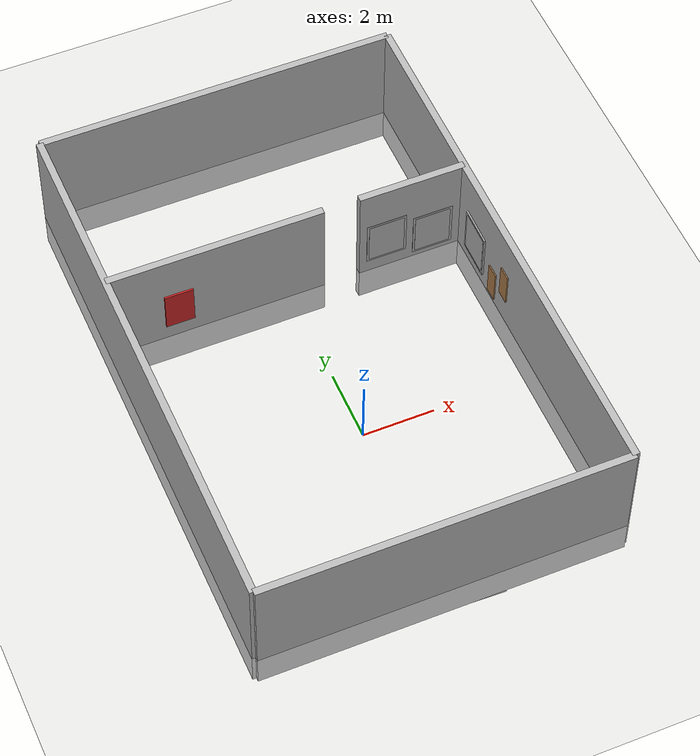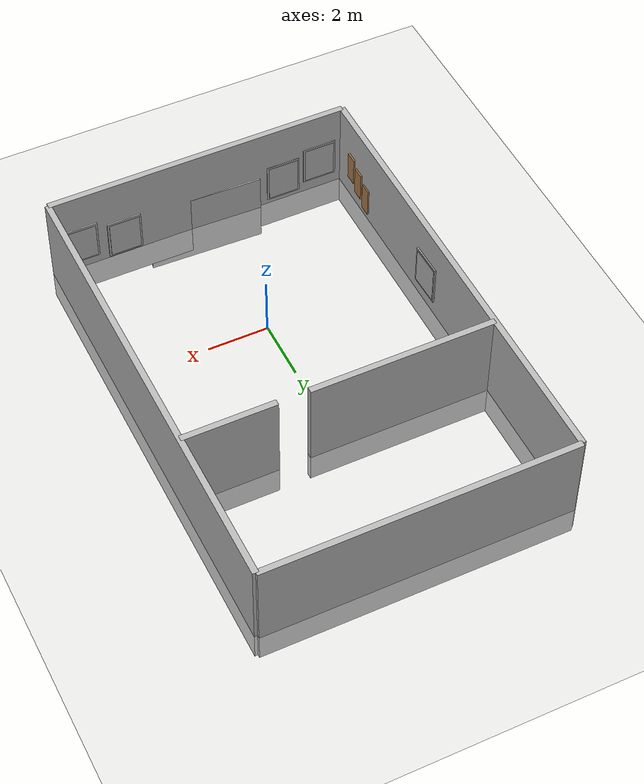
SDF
<sdf version="1.4">
 <world name="default">
  <light name="sun" type="directional">
   <pose>0 0 10 0 -0 0</pose>
   <diffuse>0.8 0.8 0.8 1</diffuse>
   <specular>0.2 0.2 0.2 1</specular>
   <attenuation>
    <range>1000</range>
    <constant>0.9</constant>
    <linear>0.01</linear>
    <quadratic>0.001</quadratic>
   </attenuation>
   <direction>-0.5 0.1 -0.9</direction>
   <spot><inner_angle>0</inner_angle><outer_angle>0</outer_angle><falloff>0</falloff></spot>
  </light>
  <model name="ground_plane">
   <static>1</static>
   <link name="link">
    <collision name="collision">
     <geometry><plane><normal>0 0 1</normal><size>100 100</size></plane></geometry>
     <surface><friction><ode><mu>100</mu><mu2>50</mu2></ode></friction></surface>
    </collision>
    <visual name="visual">
     <cast_shadows>0</cast_shadows>
     <geometry><plane><normal>0 0 1</normal><size>100 100</size></plane></geometry>
     <material>
      <script><uri>file://media/materials/scripts/gazebo.material</uri><name>Gazebo/Grey</name></script>
     </material>
    </visual>
    <enable_wind>1</enable_wind>
   </link>
  </model>
  <gravity>0 0 -9.81</gravity>
  <magnetic_field>6e-06 2.3e-05 -4.2e-05</magnetic_field>
  <atmosphere type="adiabatic"/>
  <physics type="ode">
   <max_step_size>0.001</max_step_size>
   <real_time_factor>1</real_time_factor>
   <real_time_update_rate>1000</real_time_update_rate>
  </physics>
  <scene><ambient>0.4 0.4 0.4 1</ambient><background>0.7 0.7 0.7 1</background><shadows>1</shadows></scene>
  <spherical_coordinates>
   <surface_model>EARTH_WGS84</surface_model>
   <latitude_deg>0</latitude_deg>
   <longitude_deg>0</longitude_deg>
   <elevation>0</elevation>
   <heading_deg>0</heading_deg>
  </spherical_coordinates>
  <model name="wall_1_model">
   <pose>0 -5 1 0 0 0</pose>
   <static>true</static>
   <link name="wall_1_body">
    <inertial>
     <mass>1.0</mass>
     <inertia><ixx>1.0</ixx><ixy>0.0</ixy><ixz>0.0</ixz><iyy>1.0</iyy><iyz>0.0</iyz><izz>1.0</izz></inertia>
    </inertial>
    <collision name="collision"><geometry><box><size>10 0.2 4</size></box></geometry></collision>
    <visual name="visual"><geometry><box><size>10 0.2 4</size></box></geometry></visual>
   </link>
  </model>
  <model name="wall_2_model">
   <pose>0 10 1 0 0 0</pose>
   <static>true</static>
   <link name="wall_2_body">
    <inertial>
     <mass>1.0</mass>
     <inertia><ixx>1.0</ixx><ixy>0.0</ixy><ixz>0.0</ixz><iyy>1.0</iyy><iyz>0.0</iyz><izz>1.0</izz></inertia>
    </inertial>
    <collision name="collision"><geometry><box><size>10 0.2 4</size></box></geometry></collision>
    <visual name="visual"><geometry><box><size>10 0.2 4</size></box></geometry></visual>
   </link>
  </model>
  <model name="wall_3_model">
   <pose>-5 2.5 1 0 0 0</pose>
   <static>true</static>
   <link name="wall_3_body">
    <inertial>
     <mass>1.0</mass>
     <inertia><ixx>1.0</ixx><ixy>0.0</ixy><ixz>0.0</ixz><iyy>1.0</iyy><iyz>0.0</iyz><izz>1.0</izz></inertia>
    </inertial>
    <collision name="collision"><geometry><box><size>0.2 15 4</size></box></geometry></collision>
    <visual name="visual"><geometry><box><size>0.2 15 4</size></box></geometry></visual>
   </link>
  </model>
  <model name="wall_4_model">
   <pose>5 2.5 1 0 0 0</pose>
   <static>true</static>
   <link name="wall_4_body">
    <inertial>
     <mass>1.0</mass>
     <inertia><ixx>1.0</ixx><ixy>0.0</ixy><ixz>0.0</ixz><iyy>1.0</iyy><iyz>0.0</iyz><izz>1.0</izz></inertia>
    </inertial>
    <collision name="collision"><geometry><box><size>0.2 15 4</size></box></geometry></collision>
    <visual name="visual"><geometry><box><size>0.2 15 4</size></box></geometry></visual>
   </link>
  </model>
  <model name="wall_5_model">
   <pose>-2 5 1 0 0 0</pose>
   <static>true</static>
   <link name="wall_5_body">
    <inertial>
     <mass>1.0</mass>
     <inertia><ixx>1.0</ixx><ixy>0.0</ixy><ixz>0.0</ixz><iyy>1.0</iyy><iyz>0.0</iyz><izz>1.0</izz></inertia>
    </inertial>
    <collision name="collision"><geometry><box><size>6 0.2 4</size></box></geometry></collision>
    <visual name="visual"><geometry><box><size>6 0.2 4</size></box></geometry></visual>
   </link>
  </model>
  <model name="wall_6_model">
   <pose>3.5 5 1 0 0 0</pose>
   <static>true</static>
   <link name="wall_6_body">
    <inertial>
     <mass>1.0</mass>
     <inertia><ixx>1.0</ixx><ixy>0.0</ixy><ixz>0.0</ixz><iyy>1.0</iyy><iyz>0.0</iyz><izz>1.0</izz></inertia>
    </inertial>
    <collision name="collision"><geometry><box><size>3 0.2 4</size></box></geometry></collision>
    <visual name="visual"><geometry><box><size>3 0.2 4</size></box></geometry></visual>
   </link>
  </model>
  <include>
   <uri>model://wall_with_reem_photo</uri>
   <pose>-0.1224 -4.90869 0 1e-06 -6e-06 -1.60377</pose>
  </include>
  <include><uri>model://cuadro_camara</uri><pose>-4.134 -4.917 0.4 0.000000 0.000000 0.000000</pose></include>
  <include><uri>model://cuadro_pajaro</uri><pose>-2.85 -4.92 0.15 0.000000 0.000000 0.000000</pose></include>
  <include><uri>model://cuadro_edificio</uri><pose>-4.88 1.098 0.51 0.000000 0.000000 -1.55</pose></include>
  <include><uri>model://cuadro_perro</uri><pose>2.7851 4.881 0.4 0.000000 0.000000 0.00</pose></include>
  <include><uri>model://cuadro_semaforo</uri><pose>4.12 4.881 0.15 0.000000 0.000000 0.00</pose></include>
  <include><uri>model://cuadro_radio</uri><pose>2.698 -4.8136 0.15 0.000000 0.000000 0.00</pose></include>
  <include><uri>model://cuadro_robot</uri><pose>4.15 -4.8136 0.4 0.000000 0.000000 0.00</pose></include>
  <include><uri>model://cuadro_walle</uri><pose>4.84 3.8254 0.4 0.000000 0.000000 -1.5808</pose></include>
  <include>
   <name>box_0</name>
   <uri>model://box</uri>
   <pose>-4.92 -4.0 1.25 0.000000 0.000000 0.000000</pose>
  </include>
  <include>
   <uri>model://box</uri>
   <name>box_1</name>
   <pose>-4.92 -3.5 1.0000 0.000000 0.000000 0.00</pose>
  </include>
  <include>
   <uri>model://box</uri>
   <name>box_2</name>
   <pose>-4.93 -3.0 0.750000 0.000000 0.000000 0.00</pose>
  </include>
  <include>
   <uri>model://box</uri>
   <name>box_3</name>
   <pose>4.94 2.11 1.32000 0.000000 0.000000 0.00</pose>
  </include>
  <include>
   <uri>model://box</uri>
   <name>box_4</name>
   <pose>4.94 2.77 0.66000 0.000000 0.000000 0.00</pose>
  </include>
  <include><uri>model://pal_textured_object</uri><pose>-3.111 4.86 1.11 0 0 0.0</pose></include>
 </world>
</sdf>

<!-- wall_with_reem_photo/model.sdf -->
<sdf version='1.4'>
  <model name='table'>
      <link name="wallWithREEMphoto_body">
        <inertial>
          <mass>4.0</mass>
          <inertia>
            <ixx>1.0</ixx>
            <ixy>0.0</ixy>
            <ixz>0.0</ixz>
            <iyy>1.0</iyy>
            <iyz>0.0</iyz>
            <izz>1.0</izz>
          </inertia>
        </inertial>
        <collision name="collision">
          <geometry>
            <box>
              <size>0.05 3.8 2.5</size> <!-- Wall dimensions: thickness width length -->
            </box>
          </geometry>
        </collision>
        <visual name="visual">
          <geometry>
            <box>
              <size>0.05 3.8 2.5</size> <!-- Wall dimensions: thickness width length -->
            </box>
          </geometry>
          <material>
            <script>
	      <uri>model://wall_with_reem_photo/material/scripts</uri>
	      <uri>model://wall_with_reem_photo/material/textures</uri>
              <name>Custom/REEM_photo0</name>
            </script>
          </material>
        </visual>
      </link>
    </model>
</sdf>

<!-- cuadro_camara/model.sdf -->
<sdf version='1.7'>
  <model name='cuadro_camara'>
    <link name='link_1'>
      <inertial>
        <mass>0.0721491</mass>
        <inertia>
          <ixx>0.0117732</ixx>
          <ixy>0</ixy>
          <ixz>0</ixz>
          <iyy>0.0194833</iyy>
          <iyz>0</iyz>
          <izz>0.00773492</izz>
        </inertia>
        <pose>0 0 0 0 -0 0</pose>
      </inertial>
      <pose>-0.008942 0.025101 0.708108 0 -0 0</pose>
      <self_collide>0</self_collide>
      <enable_wind>0</enable_wind>
      <kinematic>0</kinematic>
      <visual name='visual'>
        <pose>0 0 0 0 -0 0</pose>
        <geometry>
          <box>
            <size>1.13332 0.04549 1.3986</size>
          </box>
        </geometry>
        <material>
          <lighting>1</lighting>
          <script>
            <uri>model://cuadro_camara/madera/scripts</uri>
            <uri>model://cuadro_camara/madera/textures</uri>
            <name>textur/madera</name>
          </script>
          <shader type='pixel'/>
          <emissive>0 0 0 1</emissive>
        </material>
        <transparency>0</transparency>
        <cast_shadows>1</cast_shadows>
      </visual>
      <collision name='collision'>
        <laser_retro>0</laser_retro>
        <max_contacts>10</max_contacts>
        <pose>0 0 0 0 -0 0</pose>
        <geometry>
          <box>
            <size>1.13332 0.04549 1.3986</size>
          </box>
        </geometry>
        <surface>
          <friction>
            <ode>
              <mu>1</mu>
              <mu2>1</mu2>
              <fdir1>0 0 0</fdir1>
              <slip1>0</slip1>
              <slip2>0</slip2>
            </ode>
            <torsional>
              <coefficient>1</coefficient>
              <patch_radius>0</patch_radius>
              <surface_radius>0</surface_radius>
              <use_patch_radius>1</use_patch_radius>
              <ode>
                <slip>0</slip>
              </ode>
            </torsional>
          </friction>
          <bounce>
            <restitution_coefficient>0</restitution_coefficient>
            <threshold>1e+06</threshold>
          </bounce>
          <contact>
            <collide_without_contact>0</collide_without_contact>
            <collide_without_contact_bitmask>1</collide_without_contact_bitmask>
            <collide_bitmask>1</collide_bitmask>
            <ode>
              <soft_cfm>0</soft_cfm>
              <soft_erp>0.2</soft_erp>
              <kp>1e+13</kp>
              <kd>1</kd>
              <max_vel>0.01</max_vel>
              <min_depth>0</min_depth>
            </ode>
            <bullet>
              <split_impulse>1</split_impulse>
              <split_impulse_penetration_threshold>-0.01</split_impulse_penetration_threshold>
              <soft_cfm>0</soft_cfm>
              <soft_erp>0.2</soft_erp>
              <kp>1e+13</kp>
              <kd>1</kd>
            </bullet>
          </contact>
        </surface>
      </collision>
    </link>
    <link name='link_2'>
      <inertial>
        <mass>0.065261</mass>
        <inertia>
          <ixx>0.00887713</ixx>
          <ixy>0</ixy>
          <ixz>0</ixz>
          <iyy>0.0143907</iyy>
          <iyz>0</iyz>
          <izz>0.00555914</izz>
        </inertia>
        <pose>0 0 0 0 -0 0</pose>
      </inertial>
      <pose>-0.011219 0.030459 0.705148 0 -0 0</pose>
      <self_collide>0</self_collide>
      <enable_wind>0</enable_wind>
      <kinematic>0</kinematic>
      <visual name='visual'>
        <pose>0 0 0 0 -0 0</pose>
        <geometry>
          <box>
            <size>1.00896 0.064749 1.27597</size>
          </box>
        </geometry>
        <material>
          <lighting>1</lighting>
          <script>
            <uri>model://cuadro_camara/materials/scripts</uri>
            <uri>model://cuadro_camara/materials/textures</uri>
            <name>text/cam</name>
          </script>
          <shader type='pixel'/>
          <emissive>0 0 0 1</emissive>
        </material>
        <transparency>0</transparency>
        <cast_shadows>1</cast_shadows>
      </visual>
      <collision name='collision'>
        <laser_retro>0</laser_retro>
        <max_contacts>10</max_contacts>
        <pose>0 0 0 0 -0 0</pose>
        <geometry>
          <box>
            <size>1.00896 0.064749 1.27597</size>
          </box>
        </geometry>
        <surface>
          <friction>
            <ode>
              <mu>1</mu>
              <mu2>1</mu2>
              <fdir1>0 0 0</fdir1>
              <slip1>0</slip1>
              <slip2>0</slip2>
            </ode>
            <torsional>
              <coefficient>1</coefficient>
              <patch_radius>0</patch_radius>
              <surface_radius>0</surface_radius>
              <use_patch_radius>1</use_patch_radius>
              <ode>
                <slip>0</slip>
              </ode>
            </torsional>
          </friction>
          <bounce>
            <restitution_coefficient>0</restitution_coefficient>
            <threshold>1e+06</threshold>
          </bounce>
          <contact>
            <collide_without_contact>0</collide_without_contact>
            <collide_without_contact_bitmask>1</collide_without_contact_bitmask>
            <collide_bitmask>1</collide_bitmask>
            <ode>
              <soft_cfm>0</soft_cfm>
              <soft_erp>0.2</soft_erp>
              <kp>1e+13</kp>
              <kd>1</kd>
              <max_vel>0.01</max_vel>
              <min_depth>0</min_depth>
            </ode>
            <bullet>
              <split_impulse>1</split_impulse>
              <split_impulse_penetration_threshold>-0.01</split_impulse_penetration_threshold>
              <soft_cfm>0</soft_cfm>
              <soft_erp>0.2</soft_erp>
              <kp>1e+13</kp>
              <kd>1</kd>
            </bullet>
          </contact>
        </surface>
      </collision>
    </link>
    <static>1</static>
    <allow_auto_disable>1</allow_auto_disable>
  </model>
</sdf>

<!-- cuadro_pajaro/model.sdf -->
<sdf version='1.7'>
  <model name='cuadro_pajaro'>
    <link name='link_1'>
      <inertial>
        <mass>0.0721491</mass>
        <inertia>
          <ixx>0.0117732</ixx>
          <ixy>0</ixy>
          <ixz>0</ixz>
          <iyy>0.0194833</iyy>
          <iyz>0</iyz>
          <izz>0.00773492</izz>
        </inertia>
        <pose>0 0 0 0 -0 0</pose>
      </inertial>
      <pose>-0.008942 0.025101 0.708108 0 -0 0</pose>
      <self_collide>0</self_collide>
      <enable_wind>0</enable_wind>
      <kinematic>0</kinematic>
      <visual name='visual'>
        <pose>0 0 0 0 -0 0</pose>
        <geometry>
          <box>
            <size>1.13332 0.04549 1.3986</size>
          </box>
        </geometry>
        <material>
          <lighting>1</lighting>
          <script>
            <uri>model://cuadro_pajaro/madera/scripts</uri>
            <uri>model://cuadro_pajaro/madera/textures</uri>
            <name>textur/madera</name>
          </script>
          <shader type='pixel'/>
          <emissive>0 0 0 1</emissive>
        </material>
        <transparency>0</transparency>
        <cast_shadows>1</cast_shadows>
      </visual>
      <collision name='collision'>
        <laser_retro>0</laser_retro>
        <max_contacts>10</max_contacts>
        <pose>0 0 0 0 -0 0</pose>
        <geometry>
          <box>
            <size>1.13332 0.04549 1.3986</size>
          </box>
        </geometry>
        <surface>
          <friction>
            <ode>
              <mu>1</mu>
              <mu2>1</mu2>
              <fdir1>0 0 0</fdir1>
              <slip1>0</slip1>
              <slip2>0</slip2>
            </ode>
            <torsional>
              <coefficient>1</coefficient>
              <patch_radius>0</patch_radius>
              <surface_radius>0</surface_radius>
              <use_patch_radius>1</use_patch_radius>
              <ode>
                <slip>0</slip>
              </ode>
            </torsional>
          </friction>
          <bounce>
            <restitution_coefficient>0</restitution_coefficient>
            <threshold>1e+06</threshold>
          </bounce>
          <contact>
            <collide_without_contact>0</collide_without_contact>
            <collide_without_contact_bitmask>1</collide_without_contact_bitmask>
            <collide_bitmask>1</collide_bitmask>
            <ode>
              <soft_cfm>0</soft_cfm>
              <soft_erp>0.2</soft_erp>
              <kp>1e+13</kp>
              <kd>1</kd>
              <max_vel>0.01</max_vel>
              <min_depth>0</min_depth>
            </ode>
            <bullet>
              <split_impulse>1</split_impulse>
              <split_impulse_penetration_threshold>-0.01</split_impulse_penetration_threshold>
              <soft_cfm>0</soft_cfm>
              <soft_erp>0.2</soft_erp>
              <kp>1e+13</kp>
              <kd>1</kd>
            </bullet>
          </contact>
        </surface>
      </collision>
    </link>
    <link name='link_2'>
      <inertial>
        <mass>0.065261</mass>
        <inertia>
          <ixx>0.00887713</ixx>
          <ixy>0</ixy>
          <ixz>0</ixz>
          <iyy>0.0143907</iyy>
          <iyz>0</iyz>
          <izz>0.00555914</izz>
        </inertia>
        <pose>0 0 0 0 -0 0</pose>
      </inertial>
      <pose>-0.011219 0.030459 0.705148 0 -0 0</pose>
      <self_collide>0</self_collide>
      <enable_wind>0</enable_wind>
      <kinematic>0</kinematic>
      <visual name='visual'>
        <pose>0 0 0 0 -0 0</pose>
        <geometry>
          <box>
            <size>1.00896 0.064749 1.27597</size>
          </box>
        </geometry>
        <material>
          <lighting>1</lighting>
          <script>
            <uri>model://cuadro_pajaro/materials/scripts</uri>
            <uri>model://cuadro_pajaro/materials/textures</uri>
            <name>text/paj</name>
          </script>
          <shader type='pixel'/>
          <emissive>0 0 0 1</emissive>
        </material>
        <transparency>0</transparency>
        <cast_shadows>1</cast_shadows>
      </visual>
      <collision name='collision'>
        <laser_retro>0</laser_retro>
        <max_contacts>10</max_contacts>
        <pose>0 0 0 0 -0 0</pose>
        <geometry>
          <box>
            <size>1.00896 0.064749 1.27597</size>
          </box>
        </geometry>
        <surface>
          <friction>
            <ode>
              <mu>1</mu>
              <mu2>1</mu2>
              <fdir1>0 0 0</fdir1>
              <slip1>0</slip1>
              <slip2>0</slip2>
            </ode>
            <torsional>
              <coefficient>1</coefficient>
              <patch_radius>0</patch_radius>
              <surface_radius>0</surface_radius>
              <use_patch_radius>1</use_patch_radius>
              <ode>
                <slip>0</slip>
              </ode>
            </torsional>
          </friction>
          <bounce>
            <restitution_coefficient>0</restitution_coefficient>
            <threshold>1e+06</threshold>
          </bounce>
          <contact>
            <collide_without_contact>0</collide_without_contact>
            <collide_without_contact_bitmask>1</collide_without_contact_bitmask>
            <collide_bitmask>1</collide_bitmask>
            <ode>
              <soft_cfm>0</soft_cfm>
              <soft_erp>0.2</soft_erp>
              <kp>1e+13</kp>
              <kd>1</kd>
              <max_vel>0.01</max_vel>
              <min_depth>0</min_depth>
            </ode>
            <bullet>
              <split_impulse>1</split_impulse>
              <split_impulse_penetration_threshold>-0.01</split_impulse_penetration_threshold>
              <soft_cfm>0</soft_cfm>
              <soft_erp>0.2</soft_erp>
              <kp>1e+13</kp>
              <kd>1</kd>
            </bullet>
          </contact>
        </surface>
      </collision>
    </link>
    <static>1</static>
    <allow_auto_disable>1</allow_auto_disable>
  </model>
</sdf>

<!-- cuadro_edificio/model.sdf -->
<sdf version='1.7'>
  <model name='cuadro_edificio'>
    <link name='link_1'>
      <inertial>
        <mass>0.0721491</mass>
        <inertia>
          <ixx>0.0117732</ixx>
          <ixy>0</ixy>
          <ixz>0</ixz>
          <iyy>0.0194833</iyy>
          <iyz>0</iyz>
          <izz>0.00773492</izz>
        </inertia>
        <pose>0 0 0 0 -0 0</pose>
      </inertial>
      <pose>-0.008942 0.025101 0.708108 0 -0 0</pose>
      <self_collide>0</self_collide>
      <enable_wind>0</enable_wind>
      <kinematic>0</kinematic>
      <visual name='visual'>
        <pose>0 0 0 0 -0 0</pose>
        <geometry>
          <box>
            <size>1.13332 0.04549 1.3986</size>
          </box>
        </geometry>
        <material>
          <lighting>1</lighting>
          <script>
            <uri>model://cuadro_edificio/madera/scripts</uri>
            <uri>model://cuadro_edificio/madera/textures</uri>
            <name>textur/madera</name>
          </script>
          <shader type='pixel'/>
          <emissive>0 0 0 1</emissive>
        </material>
        <transparency>0</transparency>
        <cast_shadows>1</cast_shadows>
      </visual>
      <collision name='collision'>
        <laser_retro>0</laser_retro>
        <max_contacts>10</max_contacts>
        <pose>0 0 0 0 -0 0</pose>
        <geometry>
          <box>
            <size>1.13332 0.04549 1.3986</size>
          </box>
        </geometry>
        <surface>
          <friction>
            <ode>
              <mu>1</mu>
              <mu2>1</mu2>
              <fdir1>0 0 0</fdir1>
              <slip1>0</slip1>
              <slip2>0</slip2>
            </ode>
            <torsional>
              <coefficient>1</coefficient>
              <patch_radius>0</patch_radius>
              <surface_radius>0</surface_radius>
              <use_patch_radius>1</use_patch_radius>
              <ode>
                <slip>0</slip>
              </ode>
            </torsional>
          </friction>
          <bounce>
            <restitution_coefficient>0</restitution_coefficient>
            <threshold>1e+06</threshold>
          </bounce>
          <contact>
            <collide_without_contact>0</collide_without_contact>
            <collide_without_contact_bitmask>1</collide_without_contact_bitmask>
            <collide_bitmask>1</collide_bitmask>
            <ode>
              <soft_cfm>0</soft_cfm>
              <soft_erp>0.2</soft_erp>
              <kp>1e+13</kp>
              <kd>1</kd>
              <max_vel>0.01</max_vel>
              <min_depth>0</min_depth>
            </ode>
            <bullet>
              <split_impulse>1</split_impulse>
              <split_impulse_penetration_threshold>-0.01</split_impulse_penetration_threshold>
              <soft_cfm>0</soft_cfm>
              <soft_erp>0.2</soft_erp>
              <kp>1e+13</kp>
              <kd>1</kd>
            </bullet>
          </contact>
        </surface>
      </collision>
    </link>
    <link name='link_2'>
      <inertial>
        <mass>0.065261</mass>
        <inertia>
          <ixx>0.00887713</ixx>
          <ixy>0</ixy>
          <ixz>0</ixz>
          <iyy>0.0143907</iyy>
          <iyz>0</iyz>
          <izz>0.00555914</izz>
        </inertia>
        <pose>0 0 0 0 -0 0</pose>
      </inertial>
      <pose>-0.011219 0.030459 0.705148 0 -0 0</pose>
      <self_collide>0</self_collide>
      <enable_wind>0</enable_wind>
      <kinematic>0</kinematic>
      <visual name='visual'>
        <pose>0 0 0 0 -0 0</pose>
        <geometry>
          <box>
            <size>1.00896 0.064749 1.27597</size>
          </box>
        </geometry>
        <material>
          <lighting>1</lighting>
          <script>
            <uri>model://cuadro_edificio/materials/scripts</uri>
            <uri>model://cuadro_edificio/materials/textures</uri>
            <name>text/edif</name>
          </script>
          <shader type='pixel'/>
          <emissive>0 0 0 1</emissive>
        </material>
        <transparency>0</transparency>
        <cast_shadows>1</cast_shadows>
      </visual>
      <collision name='collision'>
        <laser_retro>0</laser_retro>
        <max_contacts>10</max_contacts>
        <pose>0 0 0 0 -0 0</pose>
        <geometry>
          <box>
            <size>1.00896 0.064749 1.27597</size>
          </box>
        </geometry>
        <surface>
          <friction>
            <ode>
              <mu>1</mu>
              <mu2>1</mu2>
              <fdir1>0 0 0</fdir1>
              <slip1>0</slip1>
              <slip2>0</slip2>
            </ode>
            <torsional>
              <coefficient>1</coefficient>
              <patch_radius>0</patch_radius>
              <surface_radius>0</surface_radius>
              <use_patch_radius>1</use_patch_radius>
              <ode>
                <slip>0</slip>
              </ode>
            </torsional>
          </friction>
          <bounce>
            <restitution_coefficient>0</restitution_coefficient>
            <threshold>1e+06</threshold>
          </bounce>
          <contact>
            <collide_without_contact>0</collide_without_contact>
            <collide_without_contact_bitmask>1</collide_without_contact_bitmask>
            <collide_bitmask>1</collide_bitmask>
            <ode>
              <soft_cfm>0</soft_cfm>
              <soft_erp>0.2</soft_erp>
              <kp>1e+13</kp>
              <kd>1</kd>
              <max_vel>0.01</max_vel>
              <min_depth>0</min_depth>
            </ode>
            <bullet>
              <split_impulse>1</split_impulse>
              <split_impulse_penetration_threshold>-0.01</split_impulse_penetration_threshold>
              <soft_cfm>0</soft_cfm>
              <soft_erp>0.2</soft_erp>
              <kp>1e+13</kp>
              <kd>1</kd>
            </bullet>
          </contact>
        </surface>
      </collision>
    </link>
    <static>1</static>
    <allow_auto_disable>1</allow_auto_disable>
  </model>
</sdf>

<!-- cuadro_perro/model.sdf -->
<sdf version='1.7'>
  <model name='cuadro_perro'>
    <link name='link_1'>
      <inertial>
        <mass>0.0721491</mass>
        <inertia>
          <ixx>0.0117732</ixx>
          <ixy>0</ixy>
          <ixz>0</ixz>
          <iyy>0.0194833</iyy>
          <iyz>0</iyz>
          <izz>0.00773492</izz>
        </inertia>
        <pose>0 0 0 0 -0 0</pose>
      </inertial>
      <pose>-0.008942 0.025101 0.708108 0 -0 0</pose>
      <self_collide>0</self_collide>
      <enable_wind>0</enable_wind>
      <kinematic>0</kinematic>
      <visual name='visual'>
        <pose>0 0 0 0 -0 0</pose>
        <geometry>
          <box>
            <size>1.13332 0.04549 1.3986</size>
          </box>
        </geometry>
        <material>
          <lighting>1</lighting>
          <script>
            <uri>model://cuadro_perro/madera/scripts</uri>
            <uri>model://cuadro_perro/madera/textures</uri>
            <name>textur/madera</name>
          </script>
          <shader type='pixel'/>
          <emissive>0 0 0 1</emissive>
        </material>
        <transparency>0</transparency>
        <cast_shadows>1</cast_shadows>
      </visual>
      <collision name='collision'>
        <laser_retro>0</laser_retro>
        <max_contacts>10</max_contacts>
        <pose>0 0 0 0 -0 0</pose>
        <geometry>
          <box>
            <size>1.13332 0.04549 1.3986</size>
          </box>
        </geometry>
        <surface>
          <friction>
            <ode>
              <mu>1</mu>
              <mu2>1</mu2>
              <fdir1>0 0 0</fdir1>
              <slip1>0</slip1>
              <slip2>0</slip2>
            </ode>
            <torsional>
              <coefficient>1</coefficient>
              <patch_radius>0</patch_radius>
              <surface_radius>0</surface_radius>
              <use_patch_radius>1</use_patch_radius>
              <ode>
                <slip>0</slip>
              </ode>
            </torsional>
          </friction>
          <bounce>
            <restitution_coefficient>0</restitution_coefficient>
            <threshold>1e+06</threshold>
          </bounce>
          <contact>
            <collide_without_contact>0</collide_without_contact>
            <collide_without_contact_bitmask>1</collide_without_contact_bitmask>
            <collide_bitmask>1</collide_bitmask>
            <ode>
              <soft_cfm>0</soft_cfm>
              <soft_erp>0.2</soft_erp>
              <kp>1e+13</kp>
              <kd>1</kd>
              <max_vel>0.01</max_vel>
              <min_depth>0</min_depth>
            </ode>
            <bullet>
              <split_impulse>1</split_impulse>
              <split_impulse_penetration_threshold>-0.01</split_impulse_penetration_threshold>
              <soft_cfm>0</soft_cfm>
              <soft_erp>0.2</soft_erp>
              <kp>1e+13</kp>
              <kd>1</kd>
            </bullet>
          </contact>
        </surface>
      </collision>
    </link>
    <link name='link_2'>
      <inertial>
        <mass>0.065261</mass>
        <inertia>
          <ixx>0.00887713</ixx>
          <ixy>0</ixy>
          <ixz>0</ixz>
          <iyy>0.0143907</iyy>
          <iyz>0</iyz>
          <izz>0.00555914</izz>
        </inertia>
        <pose>0 0 0 0 -0 0</pose>
      </inertial>
      <pose>-0.011219 0.030459 0.705148 0 -0 0</pose>
      <self_collide>0</self_collide>
      <enable_wind>0</enable_wind>
      <kinematic>0</kinematic>
      <visual name='visual'>
        <pose>0 0 0 0 -0 0</pose>
        <geometry>
          <box>
            <size>1.00896 0.064749 1.27597</size>
          </box>
        </geometry>
        <material>
          <lighting>1</lighting>
          <script>
            <uri>model://cuadro_perro/materials/scripts</uri>
            <uri>model://cuadro_perro/materials/textures</uri>
            <name>text/perro</name>
          </script>
          <shader type='pixel'/>
          <emissive>0 0 0 1</emissive>
        </material>
        <transparency>0</transparency>
        <cast_shadows>1</cast_shadows>
      </visual>
      <collision name='collision'>
        <laser_retro>0</laser_retro>
        <max_contacts>10</max_contacts>
        <pose>0 0 0 0 -0 0</pose>
        <geometry>
          <box>
            <size>1.00896 0.064749 1.27597</size>
          </box>
        </geometry>
        <surface>
          <friction>
            <ode>
              <mu>1</mu>
              <mu2>1</mu2>
              <fdir1>0 0 0</fdir1>
              <slip1>0</slip1>
              <slip2>0</slip2>
            </ode>
            <torsional>
              <coefficient>1</coefficient>
              <patch_radius>0</patch_radius>
              <surface_radius>0</surface_radius>
              <use_patch_radius>1</use_patch_radius>
              <ode>
                <slip>0</slip>
              </ode>
            </torsional>
          </friction>
          <bounce>
            <restitution_coefficient>0</restitution_coefficient>
            <threshold>1e+06</threshold>
          </bounce>
          <contact>
            <collide_without_contact>0</collide_without_contact>
            <collide_without_contact_bitmask>1</collide_without_contact_bitmask>
            <collide_bitmask>1</collide_bitmask>
            <ode>
              <soft_cfm>0</soft_cfm>
              <soft_erp>0.2</soft_erp>
              <kp>1e+13</kp>
              <kd>1</kd>
              <max_vel>0.01</max_vel>
              <min_depth>0</min_depth>
            </ode>
            <bullet>
              <split_impulse>1</split_impulse>
              <split_impulse_penetration_threshold>-0.01</split_impulse_penetration_threshold>
              <soft_cfm>0</soft_cfm>
              <soft_erp>0.2</soft_erp>
              <kp>1e+13</kp>
              <kd>1</kd>
            </bullet>
          </contact>
        </surface>
      </collision>
    </link>
    <static>1</static>
    <allow_auto_disable>1</allow_auto_disable>
  </model>
</sdf>

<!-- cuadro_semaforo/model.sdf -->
<sdf version='1.7'>
  <model name='cuadro_semaforo'>
    <link name='link_1'>
      <inertial>
        <mass>0.0721491</mass>
        <inertia>
          <ixx>0.0117732</ixx>
          <ixy>0</ixy>
          <ixz>0</ixz>
          <iyy>0.0194833</iyy>
          <iyz>0</iyz>
          <izz>0.00773492</izz>
        </inertia>
        <pose>0 0 0 0 -0 0</pose>
      </inertial>
      <pose>-0.008942 0.025101 0.708108 0 -0 0</pose>
      <self_collide>0</self_collide>
      <enable_wind>0</enable_wind>
      <kinematic>0</kinematic>
      <visual name='visual'>
        <pose>0 0 0 0 -0 0</pose>
        <geometry>
          <box>
            <size>1.13332 0.04549 1.3986</size>
          </box>
        </geometry>
        <material>
          <lighting>1</lighting>
          <script>
            <uri>model://cuadro_semaforo/madera/scripts</uri>
            <uri>model://cuadro_semaforo/madera/textures</uri>
            <name>textur/madera</name>
          </script>
          <shader type='pixel'/>
          <emissive>0 0 0 1</emissive>
        </material>
        <transparency>0</transparency>
        <cast_shadows>1</cast_shadows>
      </visual>
      <collision name='collision'>
        <laser_retro>0</laser_retro>
        <max_contacts>10</max_contacts>
        <pose>0 0 0 0 -0 0</pose>
        <geometry>
          <box>
            <size>1.13332 0.04549 1.3986</size>
          </box>
        </geometry>
        <surface>
          <friction>
            <ode>
              <mu>1</mu>
              <mu2>1</mu2>
              <fdir1>0 0 0</fdir1>
              <slip1>0</slip1>
              <slip2>0</slip2>
            </ode>
            <torsional>
              <coefficient>1</coefficient>
              <patch_radius>0</patch_radius>
              <surface_radius>0</surface_radius>
              <use_patch_radius>1</use_patch_radius>
              <ode>
                <slip>0</slip>
              </ode>
            </torsional>
          </friction>
          <bounce>
            <restitution_coefficient>0</restitution_coefficient>
            <threshold>1e+06</threshold>
          </bounce>
          <contact>
            <collide_without_contact>0</collide_without_contact>
            <collide_without_contact_bitmask>1</collide_without_contact_bitmask>
            <collide_bitmask>1</collide_bitmask>
            <ode>
              <soft_cfm>0</soft_cfm>
              <soft_erp>0.2</soft_erp>
              <kp>1e+13</kp>
              <kd>1</kd>
              <max_vel>0.01</max_vel>
              <min_depth>0</min_depth>
            </ode>
            <bullet>
              <split_impulse>1</split_impulse>
              <split_impulse_penetration_threshold>-0.01</split_impulse_penetration_threshold>
              <soft_cfm>0</soft_cfm>
              <soft_erp>0.2</soft_erp>
              <kp>1e+13</kp>
              <kd>1</kd>
            </bullet>
          </contact>
        </surface>
      </collision>
    </link>
    <link name='link_2'>
      <inertial>
        <mass>0.065261</mass>
        <inertia>
          <ixx>0.00887713</ixx>
          <ixy>0</ixy>
          <ixz>0</ixz>
          <iyy>0.0143907</iyy>
          <iyz>0</iyz>
          <izz>0.00555914</izz>
        </inertia>
        <pose>0 0 0 0 -0 0</pose>
      </inertial>
      <pose>-0.011219 0.030459 0.705148 0 -0 0</pose>
      <self_collide>0</self_collide>
      <enable_wind>0</enable_wind>
      <kinematic>0</kinematic>
      <visual name='visual'>
        <pose>0 0 0 0 -0 0</pose>
        <geometry>
          <box>
            <size>1.00896 0.064749 1.27597</size>
          </box>
        </geometry>
        <material>
          <lighting>1</lighting>
          <script>
            <uri>model://cuadro_semaforo/materials/scripts</uri>
            <uri>model://cuadro_semaforo/materials/textures</uri>
            <name>text/semaforo</name>
          </script>
          <shader type='pixel'/>
          <emissive>0 0 0 1</emissive>
        </material>
        <transparency>0</transparency>
        <cast_shadows>1</cast_shadows>
      </visual>
      <collision name='collision'>
        <laser_retro>0</laser_retro>
        <max_contacts>10</max_contacts>
        <pose>0 0 0 0 -0 0</pose>
        <geometry>
          <box>
            <size>1.00896 0.064749 1.27597</size>
          </box>
        </geometry>
        <surface>
          <friction>
            <ode>
              <mu>1</mu>
              <mu2>1</mu2>
              <fdir1>0 0 0</fdir1>
              <slip1>0</slip1>
              <slip2>0</slip2>
            </ode>
            <torsional>
              <coefficient>1</coefficient>
              <patch_radius>0</patch_radius>
              <surface_radius>0</surface_radius>
              <use_patch_radius>1</use_patch_radius>
              <ode>
                <slip>0</slip>
              </ode>
            </torsional>
          </friction>
          <bounce>
            <restitution_coefficient>0</restitution_coefficient>
            <threshold>1e+06</threshold>
          </bounce>
          <contact>
            <collide_without_contact>0</collide_without_contact>
            <collide_without_contact_bitmask>1</collide_without_contact_bitmask>
            <collide_bitmask>1</collide_bitmask>
            <ode>
              <soft_cfm>0</soft_cfm>
              <soft_erp>0.2</soft_erp>
              <kp>1e+13</kp>
              <kd>1</kd>
              <max_vel>0.01</max_vel>
              <min_depth>0</min_depth>
            </ode>
            <bullet>
              <split_impulse>1</split_impulse>
              <split_impulse_penetration_threshold>-0.01</split_impulse_penetration_threshold>
              <soft_cfm>0</soft_cfm>
              <soft_erp>0.2</soft_erp>
              <kp>1e+13</kp>
              <kd>1</kd>
            </bullet>
          </contact>
        </surface>
      </collision>
    </link>
    <static>1</static>
    <allow_auto_disable>1</allow_auto_disable>
  </model>
</sdf>

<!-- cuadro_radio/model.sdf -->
<sdf version='1.7'>
  <model name='cuadro_radio'>
    <link name='link_1'>
      <inertial>
        <mass>0.0721491</mass>
        <inertia>
          <ixx>0.0117732</ixx>
          <ixy>0</ixy>
          <ixz>0</ixz>
          <iyy>0.0194833</iyy>
          <iyz>0</iyz>
          <izz>0.00773492</izz>
        </inertia>
        <pose>0 0 0 0 -0 0</pose>
      </inertial>
      <pose>-0.008942 0.025101 0.708108 0 -0 0</pose>
      <self_collide>0</self_collide>
      <enable_wind>0</enable_wind>
      <kinematic>0</kinematic>
      <visual name='visual'>
        <pose>0 0 0 0 -0 0</pose>
        <geometry>
          <box>
            <size>1.13332 0.04549 1.3986</size>
          </box>
        </geometry>
        <material>
          <lighting>1</lighting>
          <script>
            <uri>model://cuadro_radio/madera/scripts</uri>
            <uri>model://cuadro_radio/madera/textures</uri>
            <name>textur/madera</name>
          </script>
          <shader type='pixel'/>
          <emissive>0 0 0 1</emissive>
        </material>
        <transparency>0</transparency>
        <cast_shadows>1</cast_shadows>
      </visual>
      <collision name='collision'>
        <laser_retro>0</laser_retro>
        <max_contacts>10</max_contacts>
        <pose>0 0 0 0 -0 0</pose>
        <geometry>
          <box>
            <size>1.13332 0.04549 1.3986</size>
          </box>
        </geometry>
        <surface>
          <friction>
            <ode>
              <mu>1</mu>
              <mu2>1</mu2>
              <fdir1>0 0 0</fdir1>
              <slip1>0</slip1>
              <slip2>0</slip2>
            </ode>
            <torsional>
              <coefficient>1</coefficient>
              <patch_radius>0</patch_radius>
              <surface_radius>0</surface_radius>
              <use_patch_radius>1</use_patch_radius>
              <ode>
                <slip>0</slip>
              </ode>
            </torsional>
          </friction>
          <bounce>
            <restitution_coefficient>0</restitution_coefficient>
            <threshold>1e+06</threshold>
          </bounce>
          <contact>
            <collide_without_contact>0</collide_without_contact>
            <collide_without_contact_bitmask>1</collide_without_contact_bitmask>
            <collide_bitmask>1</collide_bitmask>
            <ode>
              <soft_cfm>0</soft_cfm>
              <soft_erp>0.2</soft_erp>
              <kp>1e+13</kp>
              <kd>1</kd>
              <max_vel>0.01</max_vel>
              <min_depth>0</min_depth>
            </ode>
            <bullet>
              <split_impulse>1</split_impulse>
              <split_impulse_penetration_threshold>-0.01</split_impulse_penetration_threshold>
              <soft_cfm>0</soft_cfm>
              <soft_erp>0.2</soft_erp>
              <kp>1e+13</kp>
              <kd>1</kd>
            </bullet>
          </contact>
        </surface>
      </collision>
    </link>
    <link name='link_2'>
      <inertial>
        <mass>0.065261</mass>
        <inertia>
          <ixx>0.00887713</ixx>
          <ixy>0</ixy>
          <ixz>0</ixz>
          <iyy>0.0143907</iyy>
          <iyz>0</iyz>
          <izz>0.00555914</izz>
        </inertia>
        <pose>0 0 0 0 -0 0</pose>
      </inertial>
      <pose>-0.011219 0.030459 0.705148 0 -0 0</pose>
      <self_collide>0</self_collide>
      <enable_wind>0</enable_wind>
      <kinematic>0</kinematic>
      <visual name='visual'>
        <pose>0 0 0 0 -0 0</pose>
        <geometry>
          <box>
            <size>1.00896 0.064749 1.27597</size>
          </box>
        </geometry>
        <material>
          <lighting>1</lighting>
          <script>
            <uri>model://cuadro_radio/materials/scripts</uri>
            <uri>model://cuadro_radio/materials/textures</uri>
            <name>text/radio</name>
          </script>
          <shader type='pixel'/>
          <emissive>0 0 0 1</emissive>
        </material>
        <transparency>0</transparency>
        <cast_shadows>1</cast_shadows>
      </visual>
      <collision name='collision'>
        <laser_retro>0</laser_retro>
        <max_contacts>10</max_contacts>
        <pose>0 0 0 0 -0 0</pose>
        <geometry>
          <box>
            <size>1.00896 0.064749 1.27597</size>
          </box>
        </geometry>
        <surface>
          <friction>
            <ode>
              <mu>1</mu>
              <mu2>1</mu2>
              <fdir1>0 0 0</fdir1>
              <slip1>0</slip1>
              <slip2>0</slip2>
            </ode>
            <torsional>
              <coefficient>1</coefficient>
              <patch_radius>0</patch_radius>
              <surface_radius>0</surface_radius>
              <use_patch_radius>1</use_patch_radius>
              <ode>
                <slip>0</slip>
              </ode>
            </torsional>
          </friction>
          <bounce>
            <restitution_coefficient>0</restitution_coefficient>
            <threshold>1e+06</threshold>
          </bounce>
          <contact>
            <collide_without_contact>0</collide_without_contact>
            <collide_without_contact_bitmask>1</collide_without_contact_bitmask>
            <collide_bitmask>1</collide_bitmask>
            <ode>
              <soft_cfm>0</soft_cfm>
              <soft_erp>0.2</soft_erp>
              <kp>1e+13</kp>
              <kd>1</kd>
              <max_vel>0.01</max_vel>
              <min_depth>0</min_depth>
            </ode>
            <bullet>
              <split_impulse>1</split_impulse>
              <split_impulse_penetration_threshold>-0.01</split_impulse_penetration_threshold>
              <soft_cfm>0</soft_cfm>
              <soft_erp>0.2</soft_erp>
              <kp>1e+13</kp>
              <kd>1</kd>
            </bullet>
          </contact>
        </surface>
      </collision>
    </link>
    <static>1</static>
    <allow_auto_disable>1</allow_auto_disable>
  </model>
</sdf>

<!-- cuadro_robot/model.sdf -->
<sdf version='1.7'>
  <model name='cuadro_robot'>
    <link name='link_1'>
      <inertial>
        <mass>0.0721491</mass>
        <inertia>
          <ixx>0.0117732</ixx>
          <ixy>0</ixy>
          <ixz>0</ixz>
          <iyy>0.0194833</iyy>
          <iyz>0</iyz>
          <izz>0.00773492</izz>
        </inertia>
        <pose>0 0 0 0 -0 0</pose>
      </inertial>
      <pose>-0.008942 0.025101 0.708108 0 -0 0</pose>
      <self_collide>0</self_collide>
      <enable_wind>0</enable_wind>
      <kinematic>0</kinematic>
      <visual name='visual'>
        <pose>0 0 0 0 -0 0</pose>
        <geometry>
          <box>
            <size>1.13332 0.04549 1.3986</size>
          </box>
        </geometry>
        <material>
          <lighting>1</lighting>
          <script>
            <uri>model://cuadro_robot/madera/scripts</uri>
            <uri>model://cuadro_robot/madera/textures</uri>
            <name>textur/madera</name>
          </script>
          <shader type='pixel'/>
          <emissive>0 0 0 1</emissive>
        </material>
        <transparency>0</transparency>
        <cast_shadows>1</cast_shadows>
      </visual>
      <collision name='collision'>
        <laser_retro>0</laser_retro>
        <max_contacts>10</max_contacts>
        <pose>0 0 0 0 -0 0</pose>
        <geometry>
          <box>
            <size>1.13332 0.04549 1.3986</size>
          </box>
        </geometry>
        <surface>
          <friction>
            <ode>
              <mu>1</mu>
              <mu2>1</mu2>
              <fdir1>0 0 0</fdir1>
              <slip1>0</slip1>
              <slip2>0</slip2>
            </ode>
            <torsional>
              <coefficient>1</coefficient>
              <patch_radius>0</patch_radius>
              <surface_radius>0</surface_radius>
              <use_patch_radius>1</use_patch_radius>
              <ode>
                <slip>0</slip>
              </ode>
            </torsional>
          </friction>
          <bounce>
            <restitution_coefficient>0</restitution_coefficient>
            <threshold>1e+06</threshold>
          </bounce>
          <contact>
            <collide_without_contact>0</collide_without_contact>
            <collide_without_contact_bitmask>1</collide_without_contact_bitmask>
            <collide_bitmask>1</collide_bitmask>
            <ode>
              <soft_cfm>0</soft_cfm>
              <soft_erp>0.2</soft_erp>
              <kp>1e+13</kp>
              <kd>1</kd>
              <max_vel>0.01</max_vel>
              <min_depth>0</min_depth>
            </ode>
            <bullet>
              <split_impulse>1</split_impulse>
              <split_impulse_penetration_threshold>-0.01</split_impulse_penetration_threshold>
              <soft_cfm>0</soft_cfm>
              <soft_erp>0.2</soft_erp>
              <kp>1e+13</kp>
              <kd>1</kd>
            </bullet>
          </contact>
        </surface>
      </collision>
    </link>
    <link name='link_2'>
      <inertial>
        <mass>0.065261</mass>
        <inertia>
          <ixx>0.00887713</ixx>
          <ixy>0</ixy>
          <ixz>0</ixz>
          <iyy>0.0143907</iyy>
          <iyz>0</iyz>
          <izz>0.00555914</izz>
        </inertia>
        <pose>0 0 0 0 -0 0</pose>
      </inertial>
      <pose>-0.011219 0.030459 0.705148 0 -0 0</pose>
      <self_collide>0</self_collide>
      <enable_wind>0</enable_wind>
      <kinematic>0</kinematic>
      <visual name='visual'>
        <pose>0 0 0 0 -0 0</pose>
        <geometry>
          <box>
            <size>1.00896 0.064749 1.27597</size>
          </box>
        </geometry>
        <material>
          <lighting>1</lighting>
          <script>
            <uri>model://cuadro_robot/materials/scripts</uri>
            <uri>model://cuadro_robot/materials/textures</uri>
            <name>text/robot</name>
          </script>
          <shader type='pixel'/>
          <emissive>0 0 0 1</emissive>
        </material>
        <transparency>0</transparency>
        <cast_shadows>1</cast_shadows>
      </visual>
      <collision name='collision'>
        <laser_retro>0</laser_retro>
        <max_contacts>10</max_contacts>
        <pose>0 0 0 0 -0 0</pose>
        <geometry>
          <box>
            <size>1.00896 0.064749 1.27597</size>
          </box>
        </geometry>
        <surface>
          <friction>
            <ode>
              <mu>1</mu>
              <mu2>1</mu2>
              <fdir1>0 0 0</fdir1>
              <slip1>0</slip1>
              <slip2>0</slip2>
            </ode>
            <torsional>
              <coefficient>1</coefficient>
              <patch_radius>0</patch_radius>
              <surface_radius>0</surface_radius>
              <use_patch_radius>1</use_patch_radius>
              <ode>
                <slip>0</slip>
              </ode>
            </torsional>
          </friction>
          <bounce>
            <restitution_coefficient>0</restitution_coefficient>
            <threshold>1e+06</threshold>
          </bounce>
          <contact>
            <collide_without_contact>0</collide_without_contact>
            <collide_without_contact_bitmask>1</collide_without_contact_bitmask>
            <collide_bitmask>1</collide_bitmask>
            <ode>
              <soft_cfm>0</soft_cfm>
              <soft_erp>0.2</soft_erp>
              <kp>1e+13</kp>
              <kd>1</kd>
              <max_vel>0.01</max_vel>
              <min_depth>0</min_depth>
            </ode>
            <bullet>
              <split_impulse>1</split_impulse>
              <split_impulse_penetration_threshold>-0.01</split_impulse_penetration_threshold>
              <soft_cfm>0</soft_cfm>
              <soft_erp>0.2</soft_erp>
              <kp>1e+13</kp>
              <kd>1</kd>
            </bullet>
          </contact>
        </surface>
      </collision>
    </link>
    <static>1</static>
    <allow_auto_disable>1</allow_auto_disable>
  </model>
</sdf>

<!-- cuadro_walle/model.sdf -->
<sdf version='1.7'>
  <model name='cuadro_walle'>
    <link name='link_1'>
      <inertial>
        <mass>0.0721491</mass>
        <inertia>
          <ixx>0.0117732</ixx>
          <ixy>0</ixy>
          <ixz>0</ixz>
          <iyy>0.0194833</iyy>
          <iyz>0</iyz>
          <izz>0.00773492</izz>
        </inertia>
        <pose>0 0 0 0 -0 0</pose>
      </inertial>
      <pose>-0.008942 0.025101 0.708108 0 -0 0</pose>
      <self_collide>0</self_collide>
      <enable_wind>0</enable_wind>
      <kinematic>0</kinematic>
      <visual name='visual'>
        <pose>0 0 0 0 -0 0</pose>
        <geometry>
          <box>
            <size>1.13332 0.04549 1.3986</size>
          </box>
        </geometry>
        <material>
          <lighting>1</lighting>
          <script>
            <uri>model://cuadro_walle/madera/scripts</uri>
            <uri>model://cuadro_walle/madera/textures</uri>
            <name>textur/madera</name>
          </script>
          <shader type='pixel'/>
          <emissive>0 0 0 1</emissive>
        </material>
        <transparency>0</transparency>
        <cast_shadows>1</cast_shadows>
      </visual>
      <collision name='collision'>
        <laser_retro>0</laser_retro>
        <max_contacts>10</max_contacts>
        <pose>0 0 0 0 -0 0</pose>
        <geometry>
          <box>
            <size>1.13332 0.04549 1.3986</size>
          </box>
        </geometry>
        <surface>
          <friction>
            <ode>
              <mu>1</mu>
              <mu2>1</mu2>
              <fdir1>0 0 0</fdir1>
              <slip1>0</slip1>
              <slip2>0</slip2>
            </ode>
            <torsional>
              <coefficient>1</coefficient>
              <patch_radius>0</patch_radius>
              <surface_radius>0</surface_radius>
              <use_patch_radius>1</use_patch_radius>
              <ode>
                <slip>0</slip>
              </ode>
            </torsional>
          </friction>
          <bounce>
            <restitution_coefficient>0</restitution_coefficient>
            <threshold>1e+06</threshold>
          </bounce>
          <contact>
            <collide_without_contact>0</collide_without_contact>
            <collide_without_contact_bitmask>1</collide_without_contact_bitmask>
            <collide_bitmask>1</collide_bitmask>
            <ode>
              <soft_cfm>0</soft_cfm>
              <soft_erp>0.2</soft_erp>
              <kp>1e+13</kp>
              <kd>1</kd>
              <max_vel>0.01</max_vel>
              <min_depth>0</min_depth>
            </ode>
            <bullet>
              <split_impulse>1</split_impulse>
              <split_impulse_penetration_threshold>-0.01</split_impulse_penetration_threshold>
              <soft_cfm>0</soft_cfm>
              <soft_erp>0.2</soft_erp>
              <kp>1e+13</kp>
              <kd>1</kd>
            </bullet>
          </contact>
        </surface>
      </collision>
    </link>
    <link name='link_2'>
      <inertial>
        <mass>0.065261</mass>
        <inertia>
          <ixx>0.00887713</ixx>
          <ixy>0</ixy>
          <ixz>0</ixz>
          <iyy>0.0143907</iyy>
          <iyz>0</iyz>
          <izz>0.00555914</izz>
        </inertia>
        <pose>0 0 0 0 -0 0</pose>
      </inertial>
      <pose>-0.011219 0.030459 0.705148 0 -0 0</pose>
      <self_collide>0</self_collide>
      <enable_wind>0</enable_wind>
      <kinematic>0</kinematic>
      <visual name='visual'>
        <pose>0 0 0 0 -0 0</pose>
        <geometry>
          <box>
            <size>1.00896 0.064749 1.27597</size>
          </box>
        </geometry>
        <material>
          <lighting>1</lighting>
          <script>
            <uri>model://cuadro_walle/materials/scripts</uri>
            <uri>model://cuadro_walle/materials/textures</uri>
            <name>text/walle</name>
          </script>
          <shader type='pixel'/>
          <emissive>0 0 0 1</emissive>
        </material>
        <transparency>0</transparency>
        <cast_shadows>1</cast_shadows>
      </visual>
      <collision name='collision'>
        <laser_retro>0</laser_retro>
        <max_contacts>10</max_contacts>
        <pose>0 0 0 0 -0 0</pose>
        <geometry>
          <box>
            <size>1.00896 0.064749 1.27597</size>
          </box>
        </geometry>
        <surface>
          <friction>
            <ode>
              <mu>1</mu>
              <mu2>1</mu2>
              <fdir1>0 0 0</fdir1>
              <slip1>0</slip1>
              <slip2>0</slip2>
            </ode>
            <torsional>
              <coefficient>1</coefficient>
              <patch_radius>0</patch_radius>
              <surface_radius>0</surface_radius>
              <use_patch_radius>1</use_patch_radius>
              <ode>
                <slip>0</slip>
              </ode>
            </torsional>
          </friction>
          <bounce>
            <restitution_coefficient>0</restitution_coefficient>
            <threshold>1e+06</threshold>
          </bounce>
          <contact>
            <collide_without_contact>0</collide_without_contact>
            <collide_without_contact_bitmask>1</collide_without_contact_bitmask>
            <collide_bitmask>1</collide_bitmask>
            <ode>
              <soft_cfm>0</soft_cfm>
              <soft_erp>0.2</soft_erp>
              <kp>1e+13</kp>
              <kd>1</kd>
              <max_vel>0.01</max_vel>
              <min_depth>0</min_depth>
            </ode>
            <bullet>
              <split_impulse>1</split_impulse>
              <split_impulse_penetration_threshold>-0.01</split_impulse_penetration_threshold>
              <soft_cfm>0</soft_cfm>
              <soft_erp>0.2</soft_erp>
              <kp>1e+13</kp>
              <kd>1</kd>
            </bullet>
          </contact>
        </surface>
      </collision>
    </link>
    <static>1</static>
    <allow_auto_disable>1</allow_auto_disable>
  </model>
</sdf>

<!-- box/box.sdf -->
<sdf version="1.4">
  <model name="box">
    <static>1</static>
    <link name="link">
      <collision name="colision">
        <pose>0 0 0 0 0 0</pose>
        <geometry>
          <box>
            <size>0.4 0.4 1.0</size>
          </box>
        </geometry>
        <surface>
          <bounce />
          <friction>
            <ode />
          </friction>
          <contact>
            <ode />
          </contact>
        </surface>
      </collision>

      <visual name="visual">
        <pose>0 0 0 0 0 0</pose>
        <geometry>
          <box>
            <size>0.15 0.4 1.0</size>
          </box>
        </geometry>
        <material>
          <script>
            <uri>file://media/materials/scripts/gazebo.material</uri>
            <name>Gazebo/WoodPallet</name>
          </script>
        </material>
      </visual>

      <velocity_decay>
        <linear>0.000000</linear>
        <angular>0.000000</angular>
      </velocity_decay>
      <self_collide>0</self_collide>
      <kinematic>0</kinematic>
      <gravity>1</gravity>
    </link>
  </model>
</sdf>

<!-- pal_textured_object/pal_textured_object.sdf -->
<sdf version="1.4">
  <model name="pal_textured_object">
    <static>1</static>
    <link name="box">
      <gravity>false</gravity>
      <visual name="visual">
        <geometry>
          <box>
            <size>0.8 0.05 1.2</size>
          </box>
        </geometry>
        <material>
          <script>
	    <uri>model://pal_textured_object/material/scripts</uri>
	    <uri>model://pal_textured_object/material/textures</uri>
            <name>pal_textured_object</name>
          </script>
        </material>
      </visual>
      <collision name="collision">
        <geometry>
          <box>
            <size>0.04 0.154 0.1855</size>
          </box>
        </geometry>
      </collision>
    </link>
  </model>
</sdf>
